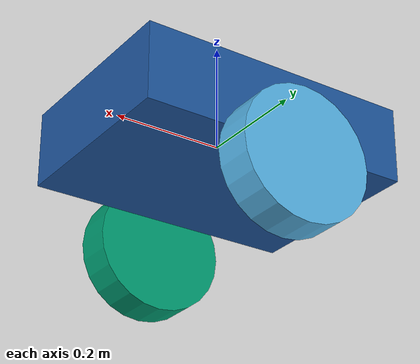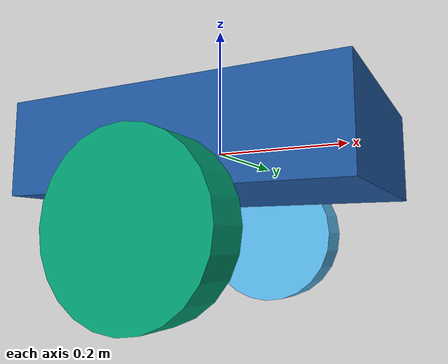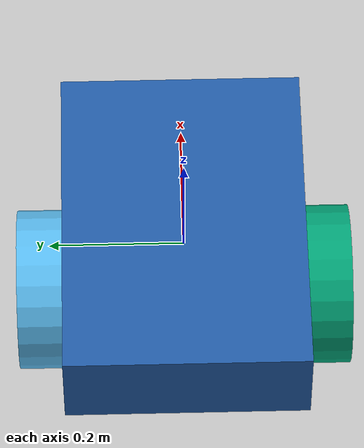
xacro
<?xml version="1.0"?>
<robot xmlns:xacro="http://www.ros.org/wiki/xacro" name="vif_amr">
  <xacro:arg name="headless" default="false"/>

  <link name="base_link">
    <inertial>
      <origin xyz="0 0 0" rpy="0 0 0"/>
      <mass value="18.0"/>
      <inertia ixx="0.30" ixy="0" ixz="0" iyy="0.45" iyz="0" izz="0.40"/>
    </inertial>
    <visual>
      <origin xyz="0 0 0" rpy="0 0 0"/>
      <geometry><box size="0.50 0.36 0.14"/></geometry>
      <material name="amr_blue"><color rgba="0.12 0.34 0.62 1"/></material>
    </visual>
    <collision>
      <origin xyz="0 0 0" rpy="0 0 0"/>
      <geometry><box size="0.50 0.36 0.14"/></geometry>
    </collision>
  </link>

  <link name="left_wheel_link">
    <visual><origin xyz="0 0 0" rpy="1.5707963 0 0"/><geometry><cylinder radius="0.12" length="0.07"/></geometry></visual>
    <collision><origin xyz="0 0 0" rpy="1.5707963 0 0"/><geometry><cylinder radius="0.12" length="0.07"/></geometry></collision>
  </link>
  <joint name="left_wheel_joint" type="continuous">
    <parent link="base_link"/><child link="left_wheel_link"/>
    <origin xyz="0 0.215 -0.12" rpy="0 0 0"/><axis xyz="0 1 0"/>
  </joint>

  <link name="right_wheel_link">
    <visual><origin xyz="0 0 0" rpy="1.5707963 0 0"/><geometry><cylinder radius="0.12" length="0.07"/></geometry></visual>
    <collision><origin xyz="0 0 0" rpy="1.5707963 0 0"/><geometry><cylinder radius="0.12" length="0.07"/></geometry></collision>
  </link>
  <joint name="right_wheel_joint" type="continuous">
    <parent link="base_link"/><child link="right_wheel_link"/>
    <origin xyz="0 -0.215 -0.12" rpy="0 0 0"/><axis xyz="0 1 0"/>
  </joint>

  <link name="camera_color_optical_frame"/>
  <!-- REP-103 optical frame: right, down, forward. -->
  <joint name="camera_optical_joint" type="fixed">
    <parent link="base_link"/><child link="camera_color_optical_frame"/>
    <origin xyz="0.19 0 0.28" rpy="-1.5707963 0 -1.5707963"/>
  </joint>

  <link name="imu_link"/>
  <joint name="imu_joint" type="fixed">
    <parent link="base_link"/><child link="imu_link"/>
    <origin xyz="0 0 0.10" rpy="0 0 0"/>
  </joint>

  <ros2_control name="MujocoAMR" type="system">
    <hardware>
      <plugin>mujoco_ros2_control/MujocoSystemInterface</plugin>
      <param name="mujoco_model">$(find vif_bringup)/simulation/mujoco/worlds/long_indoor_world.xml</param>
      <param name="headless">$(arg headless)</param>
      <param name="sim_speed_factor">1.0</param>
    </hardware>
    <joint name="left_wheel_joint">
      <command_interface name="velocity"/>
      <state_interface name="position"><param name="initial_value">0</param></state_interface>
      <state_interface name="velocity"/>
    </joint>
    <joint name="right_wheel_joint">
      <command_interface name="velocity"/>
      <state_interface name="position"><param name="initial_value">0</param></state_interface>
      <state_interface name="velocity"/>
    </joint>
    <sensor name="imu">
      <param name="mujoco_type">imu</param>
      <param name="mujoco_sensor_name">imu</param>
      <state_interface name="orientation.x"/>
      <state_interface name="orientation.y"/>
      <state_interface name="orientation.z"/>
      <state_interface name="orientation.w"/>
      <state_interface name="angular_velocity.x"/>
      <state_interface name="angular_velocity.y"/>
      <state_interface name="angular_velocity.z"/>
      <state_interface name="linear_acceleration.x"/>
      <state_interface name="linear_acceleration.y"/>
      <state_interface name="linear_acceleration.z"/>
    </sensor>
  </ros2_control>
</robot>
